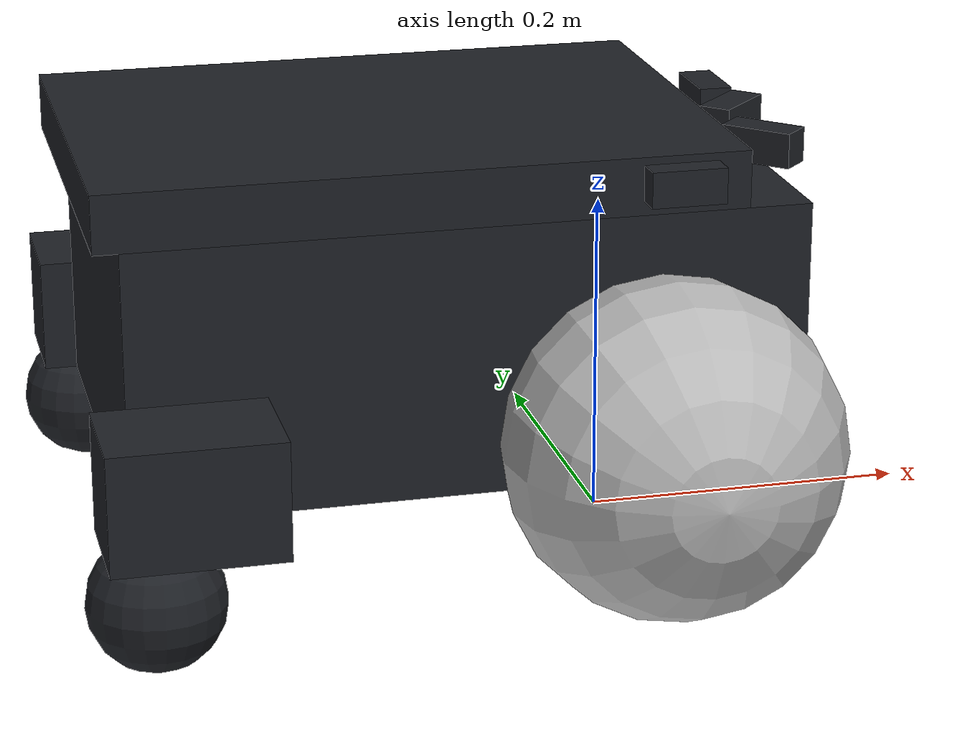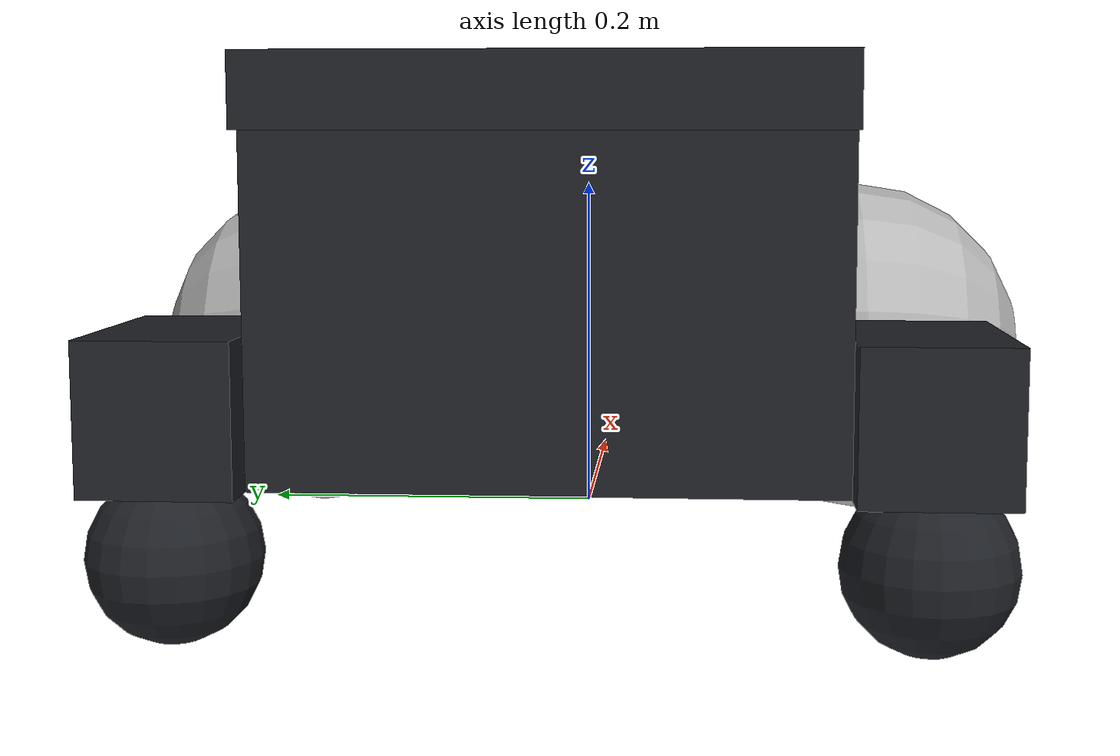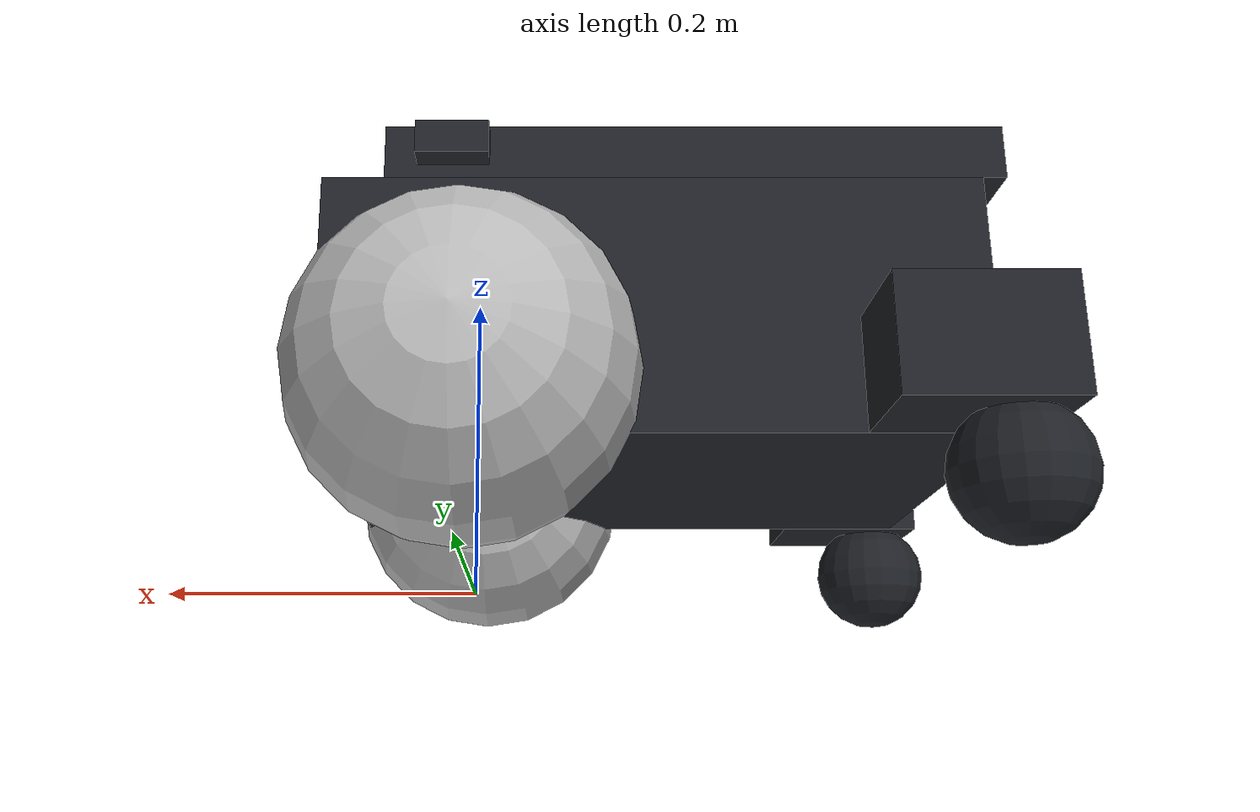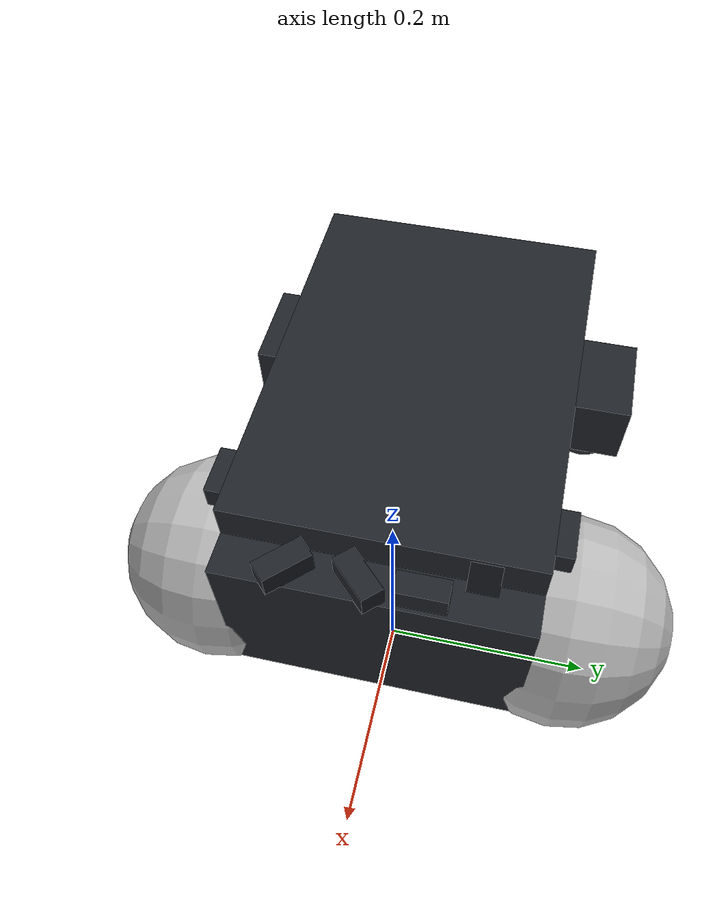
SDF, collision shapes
<?xml version="1.0"?>

<sdf version='1.6'>
  <model name='TinyRobot'>
    <plugin name="slotcar" filename="libslotcar.so">

      <nominal_drive_speed>0.5</nominal_drive_speed>
      <nominal_drive_acceleration>0.25</nominal_drive_acceleration>
      <max_drive_acceleration>0.75</max_drive_acceleration>

      <nominal_turn_speed>0.6</nominal_turn_speed>
      <nominal_turn_acceleration>1.5</nominal_turn_acceleration>
      <max_turn_acceleration>2.0</max_turn_acceleration>

      <tire_radius>0.1</tire_radius>
      <base_width>0.3206</base_width>

      <stop_distance>0.75</stop_distance>
      <stop_radius>0.75</stop_radius>

      <!-- Can the robot drive backwards -->
      <reversible>true</reversible>

      <!-- Battery params -->
      <nominal_voltage>12.0</nominal_voltage>
      <nominal_capacity>24.0</nominal_capacity>
      <charging_current>5.0</charging_current>

      <!-- Physical params -->
      <mass>20.0</mass>
      <inertia>10.0</inertia>
      <friction_coefficient>0.22</friction_coefficient>

      <!-- Power systems -->
      <nominal_power>20.0</nominal_power>

    </plugin>

    <link name='base_footprint'>
      <pose frame=''>0 0 0 0 -0 0</pose>
      <inertial>
        <pose frame=''>-0.15 0 0.13 0 -0 0</pose>
        <mass>7</mass> <!-- A higher mass causes wheels to spin while attempting to turn when using DART -->
        <inertia>
          <ixx>0.0594508</ixx>
          <ixy>0</ixy>
          <ixz>-2.77556e-17</ixz>
          <iyy>0.150753</iyy>
          <iyz>0</iyz>
          <izz>0.172704</izz>
        </inertia>
      </inertial>
      <collision name='base_footprint_fixed_joint_lump__base_link_collision'>
        <pose frame=''>-0.11 0 0.151 0 -0 0</pose>
        <geometry>
          <box>
            <size>0.398 0.268 0.16</size>
          </box>
        </geometry>
      </collision>
      <collision name='base_footprint_fixed_joint_lump__base_link_collision_1'>
        <pose frame=''>-0.136 0 0.248 0 -0 0</pose>
        <geometry>
          <box>
            <size>0.375 0.268 0.034</size>
          </box>
        </geometry>
      </collision>
      <collision name='base_footprint_fixed_joint_lump__base_link_collision_2'>
        <pose frame=''>-0.279 0.169 0.106 0 -0 0</pose>
        <geometry>
          <box>
            <size>0.1 0.07 0.07</size>
          </box>
        </geometry>
      </collision>
      <collision name='base_footprint_fixed_joint_lump__base_link_collision_3'>
        <pose frame=''>-0.279 -0.169 0.106 0 -0 0</pose>
        <geometry>
          <box>
            <size>0.1 0.07 0.07</size>
          </box>
        </geometry>
      </collision>
      <collision name='base_footprint_fixed_joint_lump__left_caster_wheel_collision_4'>
        <pose frame=''>-0.3 0.169 0.04 0 -0 0</pose>
        <geometry>
          <sphere>
            <radius>0.04</radius>
          </sphere>
        </geometry>
        <surface>
          <contact>
            <ode>
              <kp>1e+08</kp>
              <min_depth>0.005</min_depth>
            </ode>
          </contact>
          <friction>
            <ode>
              <mu>0</mu>
              <mu2>0</mu2>
            </ode>
          </friction>
        </surface>
      </collision>
      <collision name='base_footprint_fixed_joint_lump__raspicam_collision_5'>
        <pose frame=''>0.05 0.085 0.245 0 -1.15192 3.1415</pose>
        <geometry>
          <box>
            <size>0.03 0.026 0.016</size>
          </box>
        </geometry>
      </collision>
      <collision name='base_footprint_fixed_joint_lump__right_caster_wheel_collision_6'>
        <pose frame=''>-0.3 -0.169 0.04 0 -0 0</pose>
        <geometry>
          <sphere>
            <radius>0.04</radius>
          </sphere>
        </geometry>
        <surface>
          <contact>
            <ode>
              <kp>1e+08</kp>
              <min_depth>0.005</min_depth>
            </ode>
          </contact>
          <friction>
            <ode>
              <mu>0</mu>
              <mu2>0</mu2>
            </ode>
          </friction>
        </surface>
      </collision>
      <collision name='base_footprint_fixed_joint_lump__sonar_0_collision_7'>
        <pose frame=''>0.01 -0.14 0.25 0 0 -1.5708</pose>
        <geometry>
          <box>
            <size>0.02 0.044 0.021</size>
          </box>
        </geometry>
        <surface>
          <contact>
            <ode/>
          </contact>
          <friction>
            <ode/>
          </friction>
        </surface>
      </collision>
      <collision name='base_footprint_fixed_joint_lump__sonar_1_collision_8'>
        <pose frame=''>0.08 -0.07 0.25 0 -0 0.785</pose>
        <geometry>
          <box>
            <size>0.02 0.044 0.021</size>
          </box>
        </geometry>
        <surface>
          <contact>
            <ode/>
          </contact>
          <friction>
            <ode/>
          </friction>
        </surface>
      </collision>
      <collision name='base_footprint_fixed_joint_lump__sonar_2_collision_9'>
        <pose frame=''>0.08 -0.01 0.25 0 0 -0.785</pose>
        <geometry>
          <box>
            <size>0.02 0.044 0.021</size>
          </box>
        </geometry>
        <surface>
          <contact>
            <ode/>
          </contact>
          <friction>
            <ode/>
          </friction>
        </surface>
      </collision>
      <collision name='base_footprint_fixed_joint_lump__sonar_3_collision_10'>
        <pose frame=''>0.08 0.04 0.25 0 -0 0</pose>
        <geometry>
          <box>
            <size>0.02 0.044 0.021</size>
          </box>
        </geometry>
        <surface>
          <contact>
            <ode/>
          </contact>
          <friction>
            <ode/>
          </friction>
        </surface>
      </collision>
      <collision name='base_footprint_fixed_joint_lump__sonar_4_collision_11'>
        <pose frame=''>0.01 0.14 0.25 0 -0 1.5708</pose>
        <geometry>
          <box>
            <size>0.02 0.044 0.021</size>
          </box>
        </geometry>
        <surface>
          <contact>
            <ode/>
          </contact>
          <friction>
            <ode/>
          </friction>
        </surface>
      </collision>
      <!-- CIRCULAR LOW-PROFILE PUCK AMR WITH MOTORIZED TURNTABLE DECK    -->
      <!-- Modern Titanium Chassis, Dark Skirts & Glowing Cyan LED Band   -->

      <!-- 1. Lower Protective Bumper Skirt (Matte Obsidian Black) -->
      <visual name='puck_lower_skirt_visual'>
        <pose frame=''>-0.10 0 0.045 0 0 0</pose>
        <geometry>
          <cylinder>
            <radius>0.335</radius>
            <length>0.05</length>
          </cylinder>
        </geometry>
        <material>
          <ambient>0.08 0.09 0.10 1.0</ambient>
          <diffuse>0.12 0.13 0.15 1.0</diffuse>
          <specular>0.2 0.2 0.25 1.0</specular>
          <emissive>0 0 0 1</emissive>
        </material>
      </visual>

      <!-- 2. Glowing Cyan/Blue LED Status Band (360-degree perimeter ring) -->
      <visual name='puck_led_status_band_visual'>
        <pose frame=''>-0.10 0 0.078 0 0 0</pose>
        <geometry>
          <cylinder>
            <radius>0.338</radius>
            <length>0.018</length>
          </cylinder>
        </geometry>
        <material>
          <ambient>0.0 0.75 1.0 1.0</ambient>
          <diffuse>0.1 0.85 1.0 1.0</diffuse>
          <specular>0.9 0.95 1.0 1.0</specular>
          <emissive>0.0 0.82 1.0 1.0</emissive>
        </material>
      </visual>

      <!-- 3. Main Circular Puck Body (Brushed Titanium Metallic Silver) -->
      <visual name='puck_main_chassis_visual'>
        <pose frame=''>-0.10 0 0.15 0 0 0</pose>
        <geometry>
          <cylinder>
            <radius>0.330</radius>
            <length>0.13</length>
          </cylinder>
        </geometry>
        <material>
          <ambient>0.35 0.38 0.42 1.0</ambient>
          <diffuse>0.62 0.65 0.70 1.0</diffuse>
          <specular>0.85 0.88 0.92 1.0</specular>
          <emissive>0 0 0 1</emissive>
        </material>
      </visual>

      <!-- 4. Chamfered Top Bevel Collar (Sleek Dark Slate Transition) -->
      <visual name='puck_bevel_collar_visual'>
        <pose frame=''>-0.10 0 0.22 0 0 0</pose>
        <geometry>
          <cylinder>
            <radius>0.310</radius>
            <length>0.015</length>
          </cylinder>
        </geometry>
        <material>
          <ambient>0.20 0.22 0.26 1.0</ambient>
          <diffuse>0.30 0.33 0.38 1.0</diffuse>
          <specular>0.4 0.45 0.5 1.0</specular>
          <emissive>0 0 0 1</emissive>
        </material>
      </visual>

      <!-- 5. Top Motorized Turntable Deck Plate (Contrasting Dark Graphite Disc) -->
      <visual name='puck_turntable_deck_visual'>
        <pose frame=''>-0.10 0 0.238 0 0 0</pose>
        <geometry>
          <cylinder>
            <radius>0.250</radius>
            <length>0.022</length>
          </cylinder>
        </geometry>
        <material>
          <ambient>0.10 0.11 0.13 1.0</ambient>
          <diffuse>0.18 0.19 0.22 1.0</diffuse>
          <specular>0.5 0.5 0.55 1.0</specular>
          <emissive>0 0 0 1</emissive>
        </material>
      </visual>

      <!-- 6. Turntable Inner Mounting Ring (Radial Mounting Track) -->
      <visual name='puck_turntable_inner_ring_visual'>
        <pose frame=''>-0.10 0 0.250 0 0 0</pose>
        <geometry>
          <cylinder>
            <radius>0.165</radius>
            <length>0.005</length>
          </cylinder>
        </geometry>
        <material>
          <ambient>0.28 0.30 0.34 1.0</ambient>
          <diffuse>0.42 0.45 0.50 1.0</diffuse>
          <specular>0.7 0.75 0.8 1.0</specular>
          <emissive>0 0 0 1</emissive>
        </material>
      </visual>

      <!-- 7. Turntable Center Hub Accent (Brushed Aluminum Pivot with Cyan Dot) -->
      <visual name='puck_turntable_center_hub_visual'>
        <pose frame=''>-0.10 0 0.254 0 0 0</pose>
        <geometry>
          <cylinder>
            <radius>0.055</radius>
            <length>0.005</length>
          </cylinder>
        </geometry>
        <material>
          <ambient>0.7 0.75 0.8 1.0</ambient>
          <diffuse>0.85 0.88 0.92 1.0</diffuse>
          <specular>0.95 0.95 0.95 1.0</specular>
          <emissive>0.0 0.4 0.6 1.0</emissive>
        </material>
      </visual>

      <!-- 8. Front Optical & LiDAR Sensor Recess (Recessed Sensor Pod) -->
      <visual name='puck_front_sensor_bay_visual'>
        <pose frame=''>0.215 0 0.125 0 0 0</pose>
        <geometry>
          <box>
            <size>0.05 0.13 0.055</size>
          </box>
        </geometry>
        <material>
          <ambient>0.05 0.05 0.06 1.0</ambient>
          <diffuse>0.08 0.08 0.10 1.0</diffuse>
          <specular>0.8 0.85 0.9 1.0</specular>
          <emissive>0 0 0 1</emissive>
        </material>
      </visual>

      <!-- 9. Front Left Optical LiDAR Lens -->
      <visual name='puck_front_lidar_lens_left'>
        <pose frame=''>0.238 0.038 0.125 0 1.5708 0</pose>
        <geometry>
          <cylinder>
            <radius>0.013</radius>
            <length>0.012</length>
          </cylinder>
        </geometry>
        <material>
          <ambient>0.0 0.6 0.9 1.0</ambient>
          <diffuse>0.1 0.7 1.0 1.0</diffuse>
          <emissive>0.0 0.7 1.0 1.0</emissive>
        </material>
      </visual>

      <!-- 10. Front Right Optical LiDAR Lens -->
      <visual name='puck_front_lidar_lens_right'>
        <pose frame=''>0.238 -0.038 0.125 0 1.5708 0</pose>
        <geometry>
          <cylinder>
            <radius>0.013</radius>
            <length>0.012</length>
          </cylinder>
        </geometry>
        <material>
          <ambient>0.0 0.6 0.9 1.0</ambient>
          <diffuse>0.1 0.7 1.0 1.0</diffuse>
          <emissive>0.0 0.7 1.0 1.0</emissive>
        </material>
      </visual>

      <!-- 11. Forward Heading Direction Notch on Top Deck -->
      <visual name='puck_heading_notch_visual'>
        <pose frame=''>0.10 0 0.252 0 0 0</pose>
        <geometry>
          <box>
            <size>0.045 0.018 0.005</size>
          </box>
        </geometry>
        <material>
          <ambient>0.0 0.8 1.0 1.0</ambient>
          <diffuse>0.1 0.9 1.0 1.0</diffuse>
          <emissive>0.0 0.85 1.0 1.0</emissive>
        </material>
      </visual>
      <velocity_decay/>
      <velocity_decay/>
      <velocity_decay/>
      <velocity_decay/>
    </link>
    <link name='left_wheel'>
      <pose frame=''>0 0.163 0.1 0 -0 1.5708</pose>
      <inertial>
        <pose frame=''>0 0 0 3.14159 1.57079 3.14159</pose>
        <mass>3.34</mass>
        <inertia>
          <ixx>0.00904583</ixx>
          <ixy>0</ixy>
          <ixz>0</ixz>
          <iyy>0.00904583</iyy>
          <iyz>0</iyz>
          <izz>0.0167</izz>
        </inertia>
      </inertial>
      <collision name='left_wheel_collision'>
        <pose frame=''>0 0 0 3.14159 1.57079 3.14159</pose>
        <geometry>
          <sphere>
            <radius>0.1</radius>
          </sphere>
        </geometry>
        <surface>
          <contact>
            <ode>
              <kp>10000000.0</kp>
              <kd>1.0</kd>
            </ode>
          </contact>
          <friction>
            <ode>
              <mu>1</mu>
              <mu2>1</mu2>
              <fdir1>0 0 1</fdir1>
            </ode>
          </friction>
        </surface>
      </collision>
      <visual name='left_wheel_visual'>
        <pose frame=''>-0.071 0 0 0 -0 0</pose>
        <geometry>
          <mesh>
            <scale>1 1 1</scale>
            <uri>model://TinyRobot/meshes/front_wheel.dae</uri>
          </mesh>
        </geometry>
      </visual>
      <gravity>1</gravity>
      <velocity_decay/>
    </link>
    <joint name='joint_tire_left' type='revolute'>
      <child>left_wheel</child>
      <parent>base_footprint</parent>
      <axis>
        <xyz>0 1 0</xyz>
        <limit>
          <lower>-1e+16</lower>
          <upper>1e+16</upper>
        </limit>
        <dynamics>
          <spring_reference>0</spring_reference>
          <spring_stiffness>0</spring_stiffness>
        </dynamics>
        <use_parent_model_frame>1</use_parent_model_frame>
      </axis>
    </joint>
    <link name='right_wheel'>
      <pose frame=''>0 -0.163 0.1 0 -0 1.5708</pose>
      <inertial>
        <pose frame=''>0 0 0 3.14159 1.57079 3.14159</pose>
        <mass>3.34</mass>
        <inertia>
          <ixx>0.00904583</ixx>
          <ixy>0</ixy>
          <ixz>0</ixz>
          <iyy>0.00904583</iyy>
          <iyz>0</iyz>
          <izz>0.0167</izz>
        </inertia>
      </inertial>
      <collision name='right_wheel_collision'>
        <pose frame=''>0 0 0 3.14159 1.57079 3.14159</pose>
        <geometry>
          <sphere>
            <radius>0.1</radius>
          </sphere>
        </geometry>
        <surface>
          <contact>
            <ode>
              <kp>10000000.0</kp>
              <kd>1.0</kd>
            </ode>
          </contact>
          <friction>
            <ode>
              <mu>1</mu>
              <mu2>1</mu2>
              <fdir1>0 0 1</fdir1>
            </ode>
          </friction>
        </surface>
      </collision>
      <visual name='right_wheel_visual'>
        <pose frame=''>0.071 0 0 -3.14159 0 -3.14159</pose>
        <geometry>
          <mesh>
            <scale>1 1 1</scale>
            <uri>model://TinyRobot/meshes/front_wheel.dae</uri>
          </mesh>
        </geometry>
      </visual>
      <gravity>1</gravity>
      <velocity_decay/>
    </link>
    <joint name='joint_tire_right' type='revolute'>
      <child>right_wheel</child>
      <parent>base_footprint</parent>
      <axis>
        <xyz>0 1 0</xyz>
        <limit>
          <lower>-1e+16</lower>
          <upper>1e+16</upper>
        </limit>
        <dynamics>
          <spring_reference>0</spring_reference>
          <spring_stiffness>0</spring_stiffness>
        </dynamics>
        <use_parent_model_frame>1</use_parent_model_frame>
      </axis>
    </joint>
    <static>0</static>

  </model>
</sdf>
